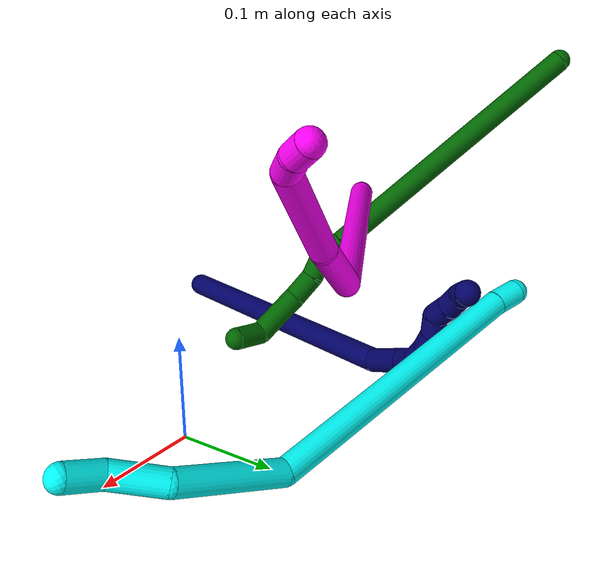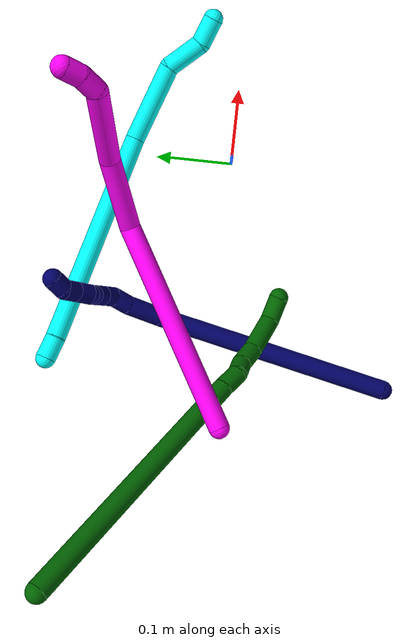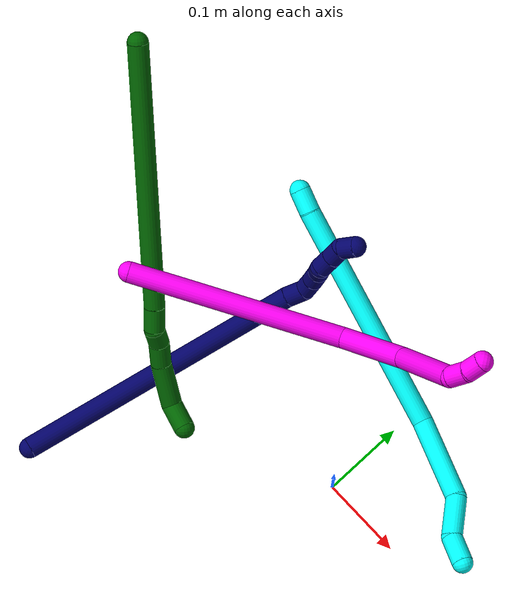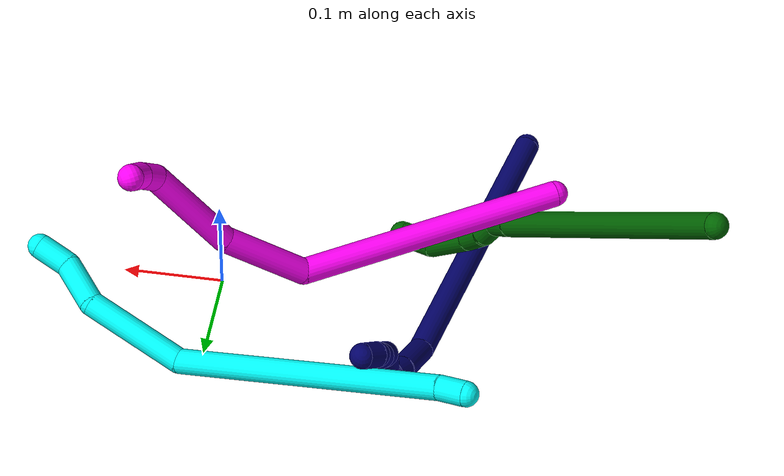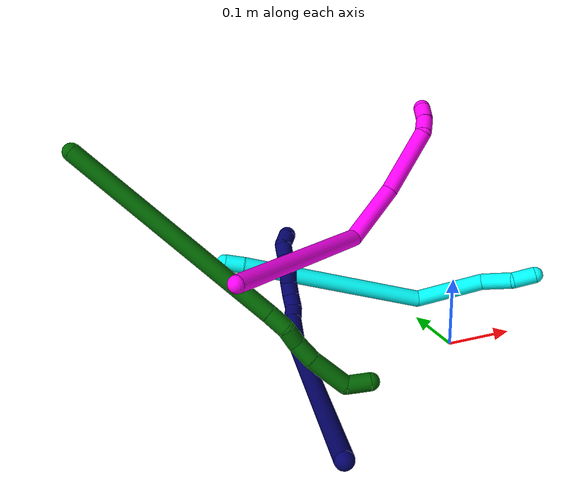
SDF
<sdf version="1.7">
 <world name="default">
  <model name="3">
   <static>0</static>
   <link name="3">
    <collision name="collision-cylinder-e_1_1_4">
     <pose>0.001653 -0.000907 -0.013918 3.07653 0.117935 2.13402</pose>
     <geometry><cylinder><radius>0.0125</radius><length>0.02809</length></cylinder></geometry>
     <surface>
      <friction><ode><mu>1.16</mu><mu2>1.16</mu2><slip1>0</slip1><slip2>0</slip2></ode></friction>
      <contact><ode><kp>1e+06</kp><kd>1</kd><max_vel>0</max_vel><min_depth>0.001</min_depth></ode></contact>
     </surface>
    </collision>
    <visual name="visual-cylinder-e_1_1_4">
     <pose>0.001653 -0.000907 -0.013918 3.07653 0.117935 2.13402</pose>
     <geometry><cylinder><radius>0.0125</radius><length>0.02809</length></cylinder></geometry>
     <material><ambient>0.003922 1 0.996078 1</ambient></material>
    </visual>
    <collision name="collision-cylinder-e_2_4_5">
     <pose>0.02704 0.00425 -0.167066 -3.09807 0.168689 -2.63763</pose>
     <geometry><cylinder><radius>0.0125</radius><length>0.282737</length></cylinder></geometry>
     <surface>
      <friction><ode><mu>1.16</mu><mu2>1.16</mu2><slip1>0</slip1><slip2>0</slip2></ode></friction>
      <contact><ode><kp>1e+06</kp><kd>1</kd><max_vel>0</max_vel><min_depth>0.001</min_depth></ode></contact>
     </surface>
    </collision>
    <visual name="visual-cylinder-e_2_4_5">
     <pose>0.02704 0.00425 -0.167066 -3.09807 0.168689 -2.63763</pose>
     <geometry><cylinder><radius>0.0125</radius><length>0.282737</length></cylinder></geometry>
     <material><ambient>0.003922 1 0.996078 1</ambient></material>
    </visual>
    <collision name="collision-cylinder-e_3_5_6">
     <pose>0.060299 -0.015155 -0.351054 2.62424 0.182892 0.667214</pose>
     <geometry><cylinder><radius>0.0125</radius><length>0.10474</length></cylinder></geometry>
     <surface>
      <friction><ode><mu>1.16</mu><mu2>1.16</mu2><slip1>0</slip1><slip2>0</slip2></ode></friction>
      <contact><ode><kp>1e+06</kp><kd>1</kd><max_vel>0</max_vel><min_depth>0.001</min_depth></ode></contact>
     </surface>
    </collision>
    <visual name="visual-cylinder-e_3_5_6">
     <pose>0.060299 -0.015155 -0.351054 2.62424 0.182892 0.667214</pose>
     <geometry><cylinder><radius>0.0125</radius><length>0.10474</length></cylinder></geometry>
     <material><ambient>0.003922 1 0.996078 1</ambient></material>
    </visual>
    <collision name="collision-cylinder-e_4_6_7">
     <pose>0.062461 -0.054605 -0.415226 2.51751 -0.298521 -0.872445</pose>
     <geometry><cylinder><radius>0.0125</radius><length>0.050065</length></cylinder></geometry>
     <surface>
      <friction><ode><mu>1.16</mu><mu2>1.16</mu2><slip1>0</slip1><slip2>0</slip2></ode></friction>
      <contact><ode><kp>1e+06</kp><kd>1</kd><max_vel>0</max_vel><min_depth>0.001</min_depth></ode></contact>
     </surface>
    </collision>
    <visual name="visual-cylinder-e_4_6_7">
     <pose>0.062461 -0.054605 -0.415226 2.51751 -0.298521 -0.872445</pose>
     <geometry><cylinder><radius>0.0125</radius><length>0.050065</length></cylinder></geometry>
     <material><ambient>0.003922 1 0.996078 1</ambient></material>
    </visual>
    <collision name="collision-cylinder-e_5_7_2">
     <pose>0.057944 -0.076953 -0.449379 2.62522 0.166307 0.61143</pose>
     <geometry><cylinder><radius>0.0125</radius><length>0.034367</length></cylinder></geometry>
     <surface>
      <friction><ode><mu>1.16</mu><mu2>1.16</mu2><slip1>0</slip1><slip2>0</slip2></ode></friction>
      <contact><ode><kp>1e+06</kp><kd>1</kd><max_vel>0</max_vel><min_depth>0.001</min_depth></ode></contact>
     </surface>
    </collision>
    <visual name="visual-cylinder-e_5_7_2">
     <pose>0.057944 -0.076953 -0.449379 2.62522 0.166307 0.61143</pose>
     <geometry><cylinder><radius>0.0125</radius><length>0.034367</length></cylinder></geometry>
     <material><ambient>0.003922 1 0.996078 1</ambient></material>
    </visual>
    <collision name="collision-sphere-2">
     <pose>0.060788 -0.08532 -0.464116 0 -0 0</pose>
     <geometry><sphere><radius>0.0125</radius></sphere></geometry>
     <surface>
      <friction><ode><mu>1.16</mu><mu2>1.16</mu2><slip1>0</slip1><slip2>0</slip2></ode></friction>
      <contact><ode><kp>1e+06</kp><kd>1</kd><max_vel>0</max_vel><min_depth>0.001</min_depth></ode></contact>
     </surface>
    </collision>
    <visual name="visual-sphere-2">
     <pose>0.060788 -0.08532 -0.464116 0 -0 0</pose>
     <geometry><sphere><radius>0.0125</radius></sphere></geometry>
     <material><ambient>0.003922 1 0.996078 1</ambient></material>
    </visual>
    <collision name="collision-sphere-7">
     <pose>0.055099 -0.068586 -0.434642 0 -0 0</pose>
     <geometry><sphere><radius>0.0125</radius></sphere></geometry>
     <surface>
      <friction><ode><mu>1.16</mu><mu2>1.16</mu2><slip1>0</slip1><slip2>0</slip2></ode></friction>
      <contact><ode><kp>1e+06</kp><kd>1</kd><max_vel>0</max_vel><min_depth>0.001</min_depth></ode></contact>
     </surface>
    </collision>
    <visual name="visual-sphere-7">
     <pose>0.055099 -0.068586 -0.434642 0 -0 0</pose>
     <geometry><sphere><radius>0.0125</radius></sphere></geometry>
     <material><ambient>0.003922 1 0.996078 1</ambient></material>
    </visual>
    <collision name="collision-sphere-6">
     <pose>0.069824 -0.040624 -0.395811 0 -0 0</pose>
     <geometry><sphere><radius>0.0125</radius></sphere></geometry>
     <surface>
      <friction><ode><mu>1.16</mu><mu2>1.16</mu2><slip1>0</slip1><slip2>0</slip2></ode></friction>
      <contact><ode><kp>1e+06</kp><kd>1</kd><max_vel>0</max_vel><min_depth>0.001</min_depth></ode></contact>
     </surface>
    </collision>
    <visual name="visual-sphere-6">
     <pose>0.069824 -0.040624 -0.395811 0 -0 0</pose>
     <geometry><sphere><radius>0.0125</radius></sphere></geometry>
     <material><ambient>0.003922 1 0.996078 1</ambient></material>
    </visual>
    <collision name="collision-sphere-5">
     <pose>0.050774 0.010314 -0.306296 0 -0 0</pose>
     <geometry><sphere><radius>0.0125</radius></sphere></geometry>
     <surface>
      <friction><ode><mu>1.16</mu><mu2>1.16</mu2><slip1>0</slip1><slip2>0</slip2></ode></friction>
      <contact><ode><kp>1e+06</kp><kd>1</kd><max_vel>0</max_vel><min_depth>0.001</min_depth></ode></contact>
     </surface>
    </collision>
    <visual name="visual-sphere-5">
     <pose>0.050774 0.010314 -0.306296 0 -0 0</pose>
     <geometry><sphere><radius>0.0125</radius></sphere></geometry>
     <material><ambient>0.003922 1 0.996078 1</ambient></material>
    </visual>
    <collision name="collision-sphere-1">
     <geometry><sphere><radius>0.0125</radius></sphere></geometry>
     <surface>
      <friction><ode><mu>1.16</mu><mu2>1.16</mu2><slip1>0</slip1><slip2>0</slip2></ode></friction>
      <contact><ode><kp>1e+06</kp><kd>1</kd><max_vel>0</max_vel><min_depth>0.001</min_depth></ode></contact>
     </surface>
    </collision>
    <visual name="visual-sphere-1">
     <geometry><sphere><radius>0.0125</radius></sphere></geometry>
     <material><ambient>0.003922 1 0.996078 1</ambient></material>
    </visual>
    <collision name="collision-sphere-4">
     <pose>0.003305 -0.001814 -0.027836 0 -0 0</pose>
     <geometry><sphere><radius>0.0125</radius></sphere></geometry>
     <surface>
      <friction><ode><mu>1.16</mu><mu2>1.16</mu2><slip1>0</slip1><slip2>0</slip2></ode></friction>
      <contact><ode><kp>1e+06</kp><kd>1</kd><max_vel>0</max_vel><min_depth>0.001</min_depth></ode></contact>
     </surface>
    </collision>
    <visual name="visual-sphere-4">
     <pose>0.003305 -0.001814 -0.027836 0 -0 0</pose>
     <geometry><sphere><radius>0.0125</radius></sphere></geometry>
     <material><ambient>0.003922 1 0.996078 1</ambient></material>
    </visual>
    <inertial>
     <pose>0.038251 -0.011579 -0.241257 0 -0 0</pose>
     <mass>0.5</mass>
     <inertia>
      <ixx>-0.002389</ixx>
      <ixy>0</ixy>
      <ixz>0</ixz>
      <iyy>0.000743</iyy>
      <iyz>0</iyz>
      <izz>-0.000393</izz>
     </inertia>
    </inertial>
   </link>
   <pose>-0.273504 0.202245 0.097118 -1.27875 -0.273561 1.07308</pose>
  </model>
  <model name="6">
   <static>0</static>
   <link name="6">
    <collision name="collision-cylinder-e_1_1_4">
     <pose>-0.009474 0.00011 -0.163631 -3.14092 -0.057833 3.11832</pose>
     <geometry><cylinder><radius>0.0125</radius><length>0.32781</length></cylinder></geometry>
     <surface>
      <friction><ode><mu>1.16</mu><mu2>1.16</mu2><slip1>0</slip1><slip2>0</slip2></ode></friction>
      <contact><ode><kp>1e+06</kp><kd>1</kd><max_vel>0</max_vel><min_depth>0.001</min_depth></ode></contact>
     </surface>
    </collision>
    <visual name="visual-cylinder-e_1_1_4">
     <pose>-0.009474 0.00011 -0.163631 -3.14092 -0.057833 3.11832</pose>
     <geometry><cylinder><radius>0.0125</radius><length>0.32781</length></cylinder></geometry>
     <material><ambient>0 0.392157 0.003922 1</ambient></material>
    </visual>
    <collision name="collision-cylinder-e_2_4_5">
     <pose>-0.020366 -0.000473 -0.341807 3.09399 -0.097105 -2.23049</pose>
     <geometry><cylinder><radius>0.0125</radius><length>0.029261</length></cylinder></geometry>
     <surface>
      <friction><ode><mu>1.16</mu><mu2>1.16</mu2><slip1>0</slip1><slip2>0</slip2></ode></friction>
      <contact><ode><kp>1e+06</kp><kd>1</kd><max_vel>0</max_vel><min_depth>0.001</min_depth></ode></contact>
     </surface>
    </collision>
    <visual name="visual-cylinder-e_2_4_5">
     <pose>-0.020366 -0.000473 -0.341807 3.09399 -0.097105 -2.23049</pose>
     <geometry><cylinder><radius>0.0125</radius><length>0.029261</length></cylinder></geometry>
     <material><ambient>0 0.392157 0.003922 1</ambient></material>
    </visual>
    <collision name="collision-cylinder-e_3_5_6">
     <pose>-0.025071 0.003254 -0.366993 -2.74795 -0.277893 1.22324</pose>
     <geometry><cylinder><radius>0.0125</radius><length>0.023962</length></cylinder></geometry>
     <surface>
      <friction><ode><mu>1.16</mu><mu2>1.16</mu2><slip1>0</slip1><slip2>0</slip2></ode></friction>
      <contact><ode><kp>1e+06</kp><kd>1</kd><max_vel>0</max_vel><min_depth>0.001</min_depth></ode></contact>
     </surface>
    </collision>
    <visual name="visual-cylinder-e_3_5_6">
     <pose>-0.025071 0.003254 -0.366993 -2.74795 -0.277893 1.22324</pose>
     <geometry><cylinder><radius>0.0125</radius><length>0.023962</length></cylinder></geometry>
     <material><ambient>0 0.392157 0.003922 1</ambient></material>
    </visual>
    <collision name="collision-cylinder-e_4_6_7">
     <pose>-0.030996 0.009445 -0.392228 -3.02075 -0.177526 1.94762</pose>
     <geometry><cylinder><radius>0.0125</radius><length>0.029874</length></cylinder></geometry>
     <surface>
      <friction><ode><mu>1.16</mu><mu2>1.16</mu2><slip1>0</slip1><slip2>0</slip2></ode></friction>
      <contact><ode><kp>1e+06</kp><kd>1</kd><max_vel>0</max_vel><min_depth>0.001</min_depth></ode></contact>
     </surface>
    </collision>
    <visual name="visual-cylinder-e_4_6_7">
     <pose>-0.030996 0.009445 -0.392228 -3.02075 -0.177526 1.94762</pose>
     <geometry><cylinder><radius>0.0125</radius><length>0.029874</length></cylinder></geometry>
     <material><ambient>0 0.392157 0.003922 1</ambient></material>
    </visual>
    <collision name="collision-cylinder-e_5_7_8">
     <pose>-0.033645 0.015907 -0.434602 -2.97435 -0.000388 0.00463</pose>
     <geometry><cylinder><radius>0.0125</radius><length>0.056344</length></cylinder></geometry>
     <surface>
      <friction><ode><mu>1.16</mu><mu2>1.16</mu2><slip1>0</slip1><slip2>0</slip2></ode></friction>
      <contact><ode><kp>1e+06</kp><kd>1</kd><max_vel>0</max_vel><min_depth>0.001</min_depth></ode></contact>
     </surface>
    </collision>
    <visual name="visual-cylinder-e_5_7_8">
     <pose>-0.033645 0.015907 -0.434602 -2.97435 -0.000388 0.00463</pose>
     <geometry><cylinder><radius>0.0125</radius><length>0.056344</length></cylinder></geometry>
     <material><ambient>0 0.392157 0.003922 1</ambient></material>
    </visual>
    <collision name="collision-cylinder-e_6_8_2">
     <pose>-0.02242 0.020446 -0.474291 3.12895 0.756244 3.10977</pose>
     <geometry><cylinder><radius>0.0125</radius><length>0.032748</length></cylinder></geometry>
     <surface>
      <friction><ode><mu>1.16</mu><mu2>1.16</mu2><slip1>0</slip1><slip2>0</slip2></ode></friction>
      <contact><ode><kp>1e+06</kp><kd>1</kd><max_vel>0</max_vel><min_depth>0.001</min_depth></ode></contact>
     </surface>
    </collision>
    <visual name="visual-cylinder-e_6_8_2">
     <pose>-0.02242 0.020446 -0.474291 3.12895 0.756244 3.10977</pose>
     <geometry><cylinder><radius>0.0125</radius><length>0.032748</length></cylinder></geometry>
     <material><ambient>0 0.392157 0.003922 1</ambient></material>
    </visual>
    <collision name="collision-sphere-2">
     <pose>-0.011184 0.020295 -0.486201 0 -0 0</pose>
     <geometry><sphere><radius>0.0125</radius></sphere></geometry>
     <surface>
      <friction><ode><mu>1.16</mu><mu2>1.16</mu2><slip1>0</slip1><slip2>0</slip2></ode></friction>
      <contact><ode><kp>1e+06</kp><kd>1</kd><max_vel>0</max_vel><min_depth>0.001</min_depth></ode></contact>
     </surface>
    </collision>
    <visual name="visual-sphere-2">
     <pose>-0.011184 0.020295 -0.486201 0 -0 0</pose>
     <geometry><sphere><radius>0.0125</radius></sphere></geometry>
     <material><ambient>0 0.392157 0.003922 1</ambient></material>
    </visual>
    <collision name="collision-sphere-4">
     <pose>-0.018948 0.00022 -0.327262 0 -0 0</pose>
     <geometry><sphere><radius>0.0125</radius></sphere></geometry>
     <surface>
      <friction><ode><mu>1.16</mu><mu2>1.16</mu2><slip1>0</slip1><slip2>0</slip2></ode></friction>
      <contact><ode><kp>1e+06</kp><kd>1</kd><max_vel>0</max_vel><min_depth>0.001</min_depth></ode></contact>
     </surface>
    </collision>
    <visual name="visual-sphere-4">
     <pose>-0.018948 0.00022 -0.327262 0 -0 0</pose>
     <geometry><sphere><radius>0.0125</radius></sphere></geometry>
     <material><ambient>0 0.392157 0.003922 1</ambient></material>
    </visual>
    <collision name="collision-sphere-1">
     <geometry><sphere><radius>0.0125</radius></sphere></geometry>
     <surface>
      <friction><ode><mu>1.16</mu><mu2>1.16</mu2><slip1>0</slip1><slip2>0</slip2></ode></friction>
      <contact><ode><kp>1e+06</kp><kd>1</kd><max_vel>0</max_vel><min_depth>0.001</min_depth></ode></contact>
     </surface>
    </collision>
    <visual name="visual-sphere-1">
     <geometry><sphere><radius>0.0125</radius></sphere></geometry>
     <material><ambient>0 0.392157 0.003922 1</ambient></material>
    </visual>
    <collision name="collision-sphere-8">
     <pose>-0.033656 0.020597 -0.462381 0 -0 0</pose>
     <geometry><sphere><radius>0.0125</radius></sphere></geometry>
     <surface>
      <friction><ode><mu>1.16</mu><mu2>1.16</mu2><slip1>0</slip1><slip2>0</slip2></ode></friction>
      <contact><ode><kp>1e+06</kp><kd>1</kd><max_vel>0</max_vel><min_depth>0.001</min_depth></ode></contact>
     </surface>
    </collision>
    <visual name="visual-sphere-8">
     <pose>-0.033656 0.020597 -0.462381 0 -0 0</pose>
     <geometry><sphere><radius>0.0125</radius></sphere></geometry>
     <material><ambient>0 0.392157 0.003922 1</ambient></material>
    </visual>
    <collision name="collision-sphere-5">
     <pose>-0.021785 -0.001166 -0.356352 0 -0 0</pose>
     <geometry><sphere><radius>0.0125</radius></sphere></geometry>
     <surface>
      <friction><ode><mu>1.16</mu><mu2>1.16</mu2><slip1>0</slip1><slip2>0</slip2></ode></friction>
      <contact><ode><kp>1e+06</kp><kd>1</kd><max_vel>0</max_vel><min_depth>0.001</min_depth></ode></contact>
     </surface>
    </collision>
    <visual name="visual-sphere-5">
     <pose>-0.021785 -0.001166 -0.356352 0 -0 0</pose>
     <geometry><sphere><radius>0.0125</radius></sphere></geometry>
     <material><ambient>0 0.392157 0.003922 1</ambient></material>
    </visual>
    <collision name="collision-sphere-6">
     <pose>-0.028358 0.007673 -0.377633 0 -0 0</pose>
     <geometry><sphere><radius>0.0125</radius></sphere></geometry>
     <surface>
      <friction><ode><mu>1.16</mu><mu2>1.16</mu2><slip1>0</slip1><slip2>0</slip2></ode></friction>
      <contact><ode><kp>1e+06</kp><kd>1</kd><max_vel>0</max_vel><min_depth>0.001</min_depth></ode></contact>
     </surface>
    </collision>
    <visual name="visual-sphere-6">
     <pose>-0.028358 0.007673 -0.377633 0 -0 0</pose>
     <geometry><sphere><radius>0.0125</radius></sphere></geometry>
     <material><ambient>0 0.392157 0.003922 1</ambient></material>
    </visual>
    <collision name="collision-sphere-7">
     <pose>-0.033634 0.011217 -0.406823 0 -0 0</pose>
     <geometry><sphere><radius>0.0125</radius></sphere></geometry>
     <surface>
      <friction><ode><mu>1.16</mu><mu2>1.16</mu2><slip1>0</slip1><slip2>0</slip2></ode></friction>
      <contact><ode><kp>1e+06</kp><kd>1</kd><max_vel>0</max_vel><min_depth>0.001</min_depth></ode></contact>
     </surface>
    </collision>
    <visual name="visual-sphere-7">
     <pose>-0.033634 0.011217 -0.406823 0 -0 0</pose>
     <geometry><sphere><radius>0.0125</radius></sphere></geometry>
     <material><ambient>0 0.392157 0.003922 1</ambient></material>
    </visual>
    <inertial>
     <pose>-0.015716 0.003896 -0.248345 0 -0 0</pose>
     <mass>0.5</mass>
     <inertia>
      <ixx>-0.002861</ixx>
      <ixy>0</ixy>
      <ixz>0</ixz>
      <iyy>0.00301</iyy>
      <iyz>0</iyz>
      <izz>0.000125</izz>
     </inertia>
    </inertial>
   </link>
   <pose>-0.48848 0.14947 0.301055 -0.693349 -0.76406 0.222307</pose>
  </model>
  <model name="7">
   <static>0</static>
   <link name="7">
    <collision name="collision-cylinder-e_1_1_4">
     <pose>0.048954 0.131707 0.065888 -1.10694 0.320925 -0.199353</pose>
     <geometry><cylinder><radius>0.0125</radius><length>0.310384</length></cylinder></geometry>
     <surface>
      <friction><ode><mu>1.16</mu><mu2>1.16</mu2><slip1>0</slip1><slip2>0</slip2></ode></friction>
      <contact><ode><kp>1e+06</kp><kd>1</kd><max_vel>0</max_vel><min_depth>0.001</min_depth></ode></contact>
     </surface>
    </collision>
    <visual name="visual-cylinder-e_1_1_4">
     <pose>0.048954 0.131707 0.065888 -1.10694 0.320925 -0.199353</pose>
     <geometry><cylinder><radius>0.0125</radius><length>0.310384</length></cylinder></geometry>
     <material><ambient>0.003922 0 0.403922 1</ambient></material>
    </visual>
    <collision name="collision-cylinder-e_2_4_5">
     <pose>0.106471 0.277801 0.147511 -0.740664 0.381895 -0.149817</pose>
     <geometry><cylinder><radius>0.0125</radius><length>0.04595</length></cylinder></geometry>
     <surface>
      <friction><ode><mu>1.16</mu><mu2>1.16</mu2><slip1>0</slip1><slip2>0</slip2></ode></friction>
      <contact><ode><kp>1e+06</kp><kd>1</kd><max_vel>0</max_vel><min_depth>0.001</min_depth></ode></contact>
     </surface>
    </collision>
    <visual name="visual-cylinder-e_2_4_5">
     <pose>0.106471 0.277801 0.147511 -0.740664 0.381895 -0.149817</pose>
     <geometry><cylinder><radius>0.0125</radius><length>0.04595</length></cylinder></geometry>
     <material><ambient>0.003922 0 0.403922 1</ambient></material>
    </visual>
    <collision name="collision-cylinder-e_3_5_6">
     <pose>0.12094 0.29833 0.171164 -0.659829 0.532527 -0.186248</pose>
     <geometry><cylinder><radius>0.0125</radius><length>0.023266</length></cylinder></geometry>
     <surface>
      <friction><ode><mu>1.16</mu><mu2>1.16</mu2><slip1>0</slip1><slip2>0</slip2></ode></friction>
      <contact><ode><kp>1e+06</kp><kd>1</kd><max_vel>0</max_vel><min_depth>0.001</min_depth></ode></contact>
     </surface>
    </collision>
    <visual name="visual-cylinder-e_3_5_6">
     <pose>0.12094 0.29833 0.171164 -0.659829 0.532527 -0.186248</pose>
     <geometry><cylinder><radius>0.0125</radius><length>0.023266</length></cylinder></geometry>
     <material><ambient>0.003922 0 0.403922 1</ambient></material>
    </visual>
    <collision name="collision-cylinder-e_4_6_7">
     <pose>0.128264 0.306017 0.188867 -0.156472 0.142174 -0.011165</pose>
     <geometry><cylinder><radius>0.0125</radius><length>0.020015</length></cylinder></geometry>
     <surface>
      <friction><ode><mu>1.16</mu><mu2>1.16</mu2><slip1>0</slip1><slip2>0</slip2></ode></friction>
      <contact><ode><kp>1e+06</kp><kd>1</kd><max_vel>0</max_vel><min_depth>0.001</min_depth></ode></contact>
     </surface>
    </collision>
    <visual name="visual-cylinder-e_4_6_7">
     <pose>0.128264 0.306017 0.188867 -0.156472 0.142174 -0.011165</pose>
     <geometry><cylinder><radius>0.0125</radius><length>0.020015</length></cylinder></geometry>
     <material><ambient>0.003922 0 0.403922 1</ambient></material>
    </visual>
    <collision name="collision-cylinder-e_5_7_8">
     <pose>0.130886 0.30732 0.208588 0.024252 0.120535 0.001463</pose>
     <geometry><cylinder><radius>0.0125</radius><length>0.020022</length></cylinder></geometry>
     <surface>
      <friction><ode><mu>1.16</mu><mu2>1.16</mu2><slip1>0</slip1><slip2>0</slip2></ode></friction>
      <contact><ode><kp>1e+06</kp><kd>1</kd><max_vel>0</max_vel><min_depth>0.001</min_depth></ode></contact>
     </surface>
    </collision>
    <visual name="visual-cylinder-e_5_7_8">
     <pose>0.130886 0.30732 0.208588 0.024252 0.120535 0.001463</pose>
     <geometry><cylinder><radius>0.0125</radius><length>0.020022</length></cylinder></geometry>
     <material><ambient>0.003922 0 0.403922 1</ambient></material>
    </visual>
    <collision name="collision-cylinder-e_6_8_9">
     <pose>0.13324 0.303452 0.227873 0.370064 0.114237 0.021405</pose>
     <geometry><cylinder><radius>0.0125</radius><length>0.020189</length></cylinder></geometry>
     <surface>
      <friction><ode><mu>1.16</mu><mu2>1.16</mu2><slip1>0</slip1><slip2>0</slip2></ode></friction>
      <contact><ode><kp>1e+06</kp><kd>1</kd><max_vel>0</max_vel><min_depth>0.001</min_depth></ode></contact>
     </surface>
    </collision>
    <visual name="visual-cylinder-e_6_8_9">
     <pose>0.13324 0.303452 0.227873 0.370064 0.114237 0.021405</pose>
     <geometry><cylinder><radius>0.0125</radius><length>0.020189</length></cylinder></geometry>
     <material><ambient>0.003922 0 0.403922 1</ambient></material>
    </visual>
    <collision name="collision-cylinder-e_7_9_10">
     <pose>0.136566 0.303262 0.246443 -0.356796 0.217588 -0.039385</pose>
     <geometry><cylinder><radius>0.0125</radius><length>0.020156</length></cylinder></geometry>
     <surface>
      <friction><ode><mu>1.16</mu><mu2>1.16</mu2><slip1>0</slip1><slip2>0</slip2></ode></friction>
      <contact><ode><kp>1e+06</kp><kd>1</kd><max_vel>0</max_vel><min_depth>0.001</min_depth></ode></contact>
     </surface>
    </collision>
    <visual name="visual-cylinder-e_7_9_10">
     <pose>0.136566 0.303262 0.246443 -0.356796 0.217588 -0.039385</pose>
     <geometry><cylinder><radius>0.0125</radius><length>0.020156</length></cylinder></geometry>
     <material><ambient>0.003922 0 0.403922 1</ambient></material>
    </visual>
    <collision name="collision-cylinder-e_8_10_11">
     <pose>0.140747 0.308919 0.265212 -0.228451 0.201711 -0.023219</pose>
     <geometry><cylinder><radius>0.0125</radius><length>0.020013</length></cylinder></geometry>
     <surface>
      <friction><ode><mu>1.16</mu><mu2>1.16</mu2><slip1>0</slip1><slip2>0</slip2></ode></friction>
      <contact><ode><kp>1e+06</kp><kd>1</kd><max_vel>0</max_vel><min_depth>0.001</min_depth></ode></contact>
     </surface>
    </collision>
    <visual name="visual-cylinder-e_8_10_11">
     <pose>0.140747 0.308919 0.265212 -0.228451 0.201711 -0.023219</pose>
     <geometry><cylinder><radius>0.0125</radius><length>0.020013</length></cylinder></geometry>
     <material><ambient>0.003922 0 0.403922 1</ambient></material>
    </visual>
    <collision name="collision-cylinder-e_9_11_2">
     <pose>0.149598 0.314229 0.281368 -0.437389 0.753777 -0.175485</pose>
     <geometry><cylinder><radius>0.0125</radius><length>0.020006</length></cylinder></geometry>
     <surface>
      <friction><ode><mu>1.16</mu><mu2>1.16</mu2><slip1>0</slip1><slip2>0</slip2></ode></friction>
      <contact><ode><kp>1e+06</kp><kd>1</kd><max_vel>0</max_vel><min_depth>0.001</min_depth></ode></contact>
     </surface>
    </collision>
    <visual name="visual-cylinder-e_9_11_2">
     <pose>0.149598 0.314229 0.281368 -0.437389 0.753777 -0.175485</pose>
     <geometry><cylinder><radius>0.0125</radius><length>0.020006</length></cylinder></geometry>
     <material><ambient>0.003922 0 0.403922 1</ambient></material>
    </visual>
    <collision name="collision-sphere-2">
     <pose>0.156444 0.317318 0.287975 0 -0 0</pose>
     <geometry><sphere><radius>0.0125</radius></sphere></geometry>
     <surface>
      <friction><ode><mu>1.16</mu><mu2>1.16</mu2><slip1>0</slip1><slip2>0</slip2></ode></friction>
      <contact><ode><kp>1e+06</kp><kd>1</kd><max_vel>0</max_vel><min_depth>0.001</min_depth></ode></contact>
     </surface>
    </collision>
    <visual name="visual-sphere-2">
     <pose>0.156444 0.317318 0.287975 0 -0 0</pose>
     <geometry><sphere><radius>0.0125</radius></sphere></geometry>
     <material><ambient>0.003922 0 0.403922 1</ambient></material>
    </visual>
    <collision name="collision-sphere-11">
     <pose>0.142751 0.311139 0.274761 0 -0 0</pose>
     <geometry><sphere><radius>0.0125</radius></sphere></geometry>
     <surface>
      <friction><ode><mu>1.16</mu><mu2>1.16</mu2><slip1>0</slip1><slip2>0</slip2></ode></friction>
      <contact><ode><kp>1e+06</kp><kd>1</kd><max_vel>0</max_vel><min_depth>0.001</min_depth></ode></contact>
     </surface>
    </collision>
    <visual name="visual-sphere-11">
     <pose>0.142751 0.311139 0.274761 0 -0 0</pose>
     <geometry><sphere><radius>0.0125</radius></sphere></geometry>
     <material><ambient>0.003922 0 0.403922 1</ambient></material>
    </visual>
    <collision name="collision-sphere-10">
     <pose>0.138742 0.306699 0.255664 0 -0 0</pose>
     <geometry><sphere><radius>0.0125</radius></sphere></geometry>
     <surface>
      <friction><ode><mu>1.16</mu><mu2>1.16</mu2><slip1>0</slip1><slip2>0</slip2></ode></friction>
      <contact><ode><kp>1e+06</kp><kd>1</kd><max_vel>0</max_vel><min_depth>0.001</min_depth></ode></contact>
     </surface>
    </collision>
    <visual name="visual-sphere-10">
     <pose>0.138742 0.306699 0.255664 0 -0 0</pose>
     <geometry><sphere><radius>0.0125</radius></sphere></geometry>
     <material><ambient>0.003922 0 0.403922 1</ambient></material>
    </visual>
    <collision name="collision-sphere-9">
     <pose>0.134391 0.299825 0.237223 0 -0 0</pose>
     <geometry><sphere><radius>0.0125</radius></sphere></geometry>
     <surface>
      <friction><ode><mu>1.16</mu><mu2>1.16</mu2><slip1>0</slip1><slip2>0</slip2></ode></friction>
      <contact><ode><kp>1e+06</kp><kd>1</kd><max_vel>0</max_vel><min_depth>0.001</min_depth></ode></contact>
     </surface>
    </collision>
    <visual name="visual-sphere-9">
     <pose>0.134391 0.299825 0.237223 0 -0 0</pose>
     <geometry><sphere><radius>0.0125</radius></sphere></geometry>
     <material><ambient>0.003922 0 0.403922 1</ambient></material>
    </visual>
    <collision name="collision-sphere-4">
     <pose>0.097909 0.263414 0.131776 0 -0 0</pose>
     <geometry><sphere><radius>0.0125</radius></sphere></geometry>
     <surface>
      <friction><ode><mu>1.16</mu><mu2>1.16</mu2><slip1>0</slip1><slip2>0</slip2></ode></friction>
      <contact><ode><kp>1e+06</kp><kd>1</kd><max_vel>0</max_vel><min_depth>0.001</min_depth></ode></contact>
     </surface>
    </collision>
    <visual name="visual-sphere-4">
     <pose>0.097909 0.263414 0.131776 0 -0 0</pose>
     <geometry><sphere><radius>0.0125</radius></sphere></geometry>
     <material><ambient>0.003922 0 0.403922 1</ambient></material>
    </visual>
    <collision name="collision-sphere-1">
     <geometry><sphere><radius>0.0125</radius></sphere></geometry>
     <surface>
      <friction><ode><mu>1.16</mu><mu2>1.16</mu2><slip1>0</slip1><slip2>0</slip2></ode></friction>
      <contact><ode><kp>1e+06</kp><kd>1</kd><max_vel>0</max_vel><min_depth>0.001</min_depth></ode></contact>
     </surface>
    </collision>
    <visual name="visual-sphere-1">
     <geometry><sphere><radius>0.0125</radius></sphere></geometry>
     <material><ambient>0.003922 0 0.403922 1</ambient></material>
    </visual>
    <collision name="collision-sphere-8">
     <pose>0.132089 0.307079 0.218523 0 -0 0</pose>
     <geometry><sphere><radius>0.0125</radius></sphere></geometry>
     <surface>
      <friction><ode><mu>1.16</mu><mu2>1.16</mu2><slip1>0</slip1><slip2>0</slip2></ode></friction>
      <contact><ode><kp>1e+06</kp><kd>1</kd><max_vel>0</max_vel><min_depth>0.001</min_depth></ode></contact>
     </surface>
    </collision>
    <visual name="visual-sphere-8">
     <pose>0.132089 0.307079 0.218523 0 -0 0</pose>
     <geometry><sphere><radius>0.0125</radius></sphere></geometry>
     <material><ambient>0.003922 0 0.403922 1</ambient></material>
    </visual>
    <collision name="collision-sphere-5">
     <pose>0.115034 0.292187 0.163245 0 -0 0</pose>
     <geometry><sphere><radius>0.0125</radius></sphere></geometry>
     <surface>
      <friction><ode><mu>1.16</mu><mu2>1.16</mu2><slip1>0</slip1><slip2>0</slip2></ode></friction>
      <contact><ode><kp>1e+06</kp><kd>1</kd><max_vel>0</max_vel><min_depth>0.001</min_depth></ode></contact>
     </surface>
    </collision>
    <visual name="visual-sphere-5">
     <pose>0.115034 0.292187 0.163245 0 -0 0</pose>
     <geometry><sphere><radius>0.0125</radius></sphere></geometry>
     <material><ambient>0.003922 0 0.403922 1</ambient></material>
    </visual>
    <collision name="collision-sphere-6">
     <pose>0.126846 0.304474 0.179082 0 -0 0</pose>
     <geometry><sphere><radius>0.0125</radius></sphere></geometry>
     <surface>
      <friction><ode><mu>1.16</mu><mu2>1.16</mu2><slip1>0</slip1><slip2>0</slip2></ode></friction>
      <contact><ode><kp>1e+06</kp><kd>1</kd><max_vel>0</max_vel><min_depth>0.001</min_depth></ode></contact>
     </surface>
    </collision>
    <visual name="visual-sphere-6">
     <pose>0.126846 0.304474 0.179082 0 -0 0</pose>
     <geometry><sphere><radius>0.0125</radius></sphere></geometry>
     <material><ambient>0.003922 0 0.403922 1</ambient></material>
    </visual>
    <collision name="collision-sphere-7">
     <pose>0.129682 0.307561 0.198653 0 -0 0</pose>
     <geometry><sphere><radius>0.0125</radius></sphere></geometry>
     <surface>
      <friction><ode><mu>1.16</mu><mu2>1.16</mu2><slip1>0</slip1><slip2>0</slip2></ode></friction>
      <contact><ode><kp>1e+06</kp><kd>1</kd><max_vel>0</max_vel><min_depth>0.001</min_depth></ode></contact>
     </surface>
    </collision>
    <visual name="visual-sphere-7">
     <pose>0.129682 0.307561 0.198653 0 -0 0</pose>
     <geometry><sphere><radius>0.0125</radius></sphere></geometry>
     <material><ambient>0.003922 0 0.403922 1</ambient></material>
    </visual>
    <inertial>
     <pose>0.078681 0.195143 0.119344 0 -0 0</pose>
     <mass>0.5</mass>
     <inertia>
      <ixx>0.001888</ixx>
      <ixy>0</ixy>
      <ixz>0</ixz>
      <iyy>0.000808</iyy>
      <iyz>0</iyz>
      <izz>-0.002907</izz>
     </inertia>
    </inertial>
   </link>
   <pose>-0.277634 -0.230875 0.011499 -0.485735 -0.065716 0.109661</pose>
  </model>
  <model name="10">
   <static>0</static>
   <link name="10">
    <collision name="collision-cylinder-e_1_1_4">
     <pose>-0.00706 -0.007339 -0.129232 3.08487 -0.054492 -1.53061</pose>
     <geometry><cylinder><radius>0.0125</radius><length>0.259264</length></cylinder></geometry>
     <surface>
      <friction><ode><mu>1.16</mu><mu2>1.16</mu2><slip1>0</slip1><slip2>0</slip2></ode></friction>
      <contact><ode><kp>1e+06</kp><kd>1</kd><max_vel>0</max_vel><min_depth>0.001</min_depth></ode></contact>
     </surface>
    </collision>
    <visual name="visual-cylinder-e_1_1_4">
     <pose>-0.00706 -0.007339 -0.129232 3.08487 -0.054492 -1.53061</pose>
     <geometry><cylinder><radius>0.0125</radius><length>0.259264</length></cylinder></geometry>
     <material><ambient>1 0 0.964706 1</ambient></material>
    </visual>
    <collision name="collision-cylinder-e_2_4_5">
     <pose>0.007014 -0.037321 -0.293581 2.56888 0.468264 1.36164</pose>
     <geometry><cylinder><radius>0.0125</radius><length>0.093652</length></cylinder></geometry>
     <surface>
      <friction><ode><mu>1.16</mu><mu2>1.16</mu2><slip1>0</slip1><slip2>0</slip2></ode></friction>
      <contact><ode><kp>1e+06</kp><kd>1</kd><max_vel>0</max_vel><min_depth>0.001</min_depth></ode></contact>
     </surface>
    </collision>
    <visual name="visual-cylinder-e_2_4_5">
     <pose>0.007014 -0.037321 -0.293581 2.56888 0.468264 1.36164</pose>
     <geometry><cylinder><radius>0.0125</radius><length>0.093652</length></cylinder></geometry>
     <material><ambient>1 0 0.964706 1</ambient></material>
    </visual>
    <collision name="collision-cylinder-e_3_5_6">
     <pose>0.057852 -0.090768 -0.35503 2.27808 0.63253 1.23516</pose>
     <geometry><cylinder><radius>0.0125</radius><length>0.100489</length></cylinder></geometry>
     <surface>
      <friction><ode><mu>1.16</mu><mu2>1.16</mu2><slip1>0</slip1><slip2>0</slip2></ode></friction>
      <contact><ode><kp>1e+06</kp><kd>1</kd><max_vel>0</max_vel><min_depth>0.001</min_depth></ode></contact>
     </surface>
    </collision>
    <visual name="visual-cylinder-e_3_5_6">
     <pose>0.057852 -0.090768 -0.35503 2.27808 0.63253 1.23516</pose>
     <geometry><cylinder><radius>0.0125</radius><length>0.100489</length></cylinder></geometry>
     <material><ambient>1 0 0.964706 1</ambient></material>
    </visual>
    <collision name="collision-cylinder-e_4_6_7">
     <pose>0.096226 -0.122455 -0.389773 3.03692 0.79788 2.89431</pose>
     <geometry><cylinder><radius>0.0125</radius><length>0.024224</length></cylinder></geometry>
     <surface>
      <friction><ode><mu>1.16</mu><mu2>1.16</mu2><slip1>0</slip1><slip2>0</slip2></ode></friction>
      <contact><ode><kp>1e+06</kp><kd>1</kd><max_vel>0</max_vel><min_depth>0.001</min_depth></ode></contact>
     </surface>
    </collision>
    <visual name="visual-cylinder-e_4_6_7">
     <pose>0.096226 -0.122455 -0.389773 3.03692 0.79788 2.89431</pose>
     <geometry><cylinder><radius>0.0125</radius><length>0.024224</length></cylinder></geometry>
     <material><ambient>1 0 0.964706 1</ambient></material>
    </visual>
    <collision name="collision-cylinder-e_5_7_2">
     <pose>0.113761 -0.121483 -0.404748 -2.86598 0.914848 -2.59234</pose>
     <geometry><cylinder><radius>0.0125</radius><length>0.02237</length></cylinder></geometry>
     <surface>
      <friction><ode><mu>1.16</mu><mu2>1.16</mu2><slip1>0</slip1><slip2>0</slip2></ode></friction>
      <contact><ode><kp>1e+06</kp><kd>1</kd><max_vel>0</max_vel><min_depth>0.001</min_depth></ode></contact>
     </surface>
    </collision>
    <visual name="visual-cylinder-e_5_7_2">
     <pose>0.113761 -0.121483 -0.404748 -2.86598 0.914848 -2.59234</pose>
     <geometry><cylinder><radius>0.0125</radius><length>0.02237</length></cylinder></geometry>
     <material><ambient>1 0 0.964706 1</ambient></material>
    </visual>
    <collision name="collision-sphere-2">
     <pose>0.122625 -0.119626 -0.411312 0 -0 0</pose>
     <geometry><sphere><radius>0.0125</radius></sphere></geometry>
     <surface>
      <friction><ode><mu>1.16</mu><mu2>1.16</mu2><slip1>0</slip1><slip2>0</slip2></ode></friction>
      <contact><ode><kp>1e+06</kp><kd>1</kd><max_vel>0</max_vel><min_depth>0.001</min_depth></ode></contact>
     </surface>
    </collision>
    <visual name="visual-sphere-2">
     <pose>0.122625 -0.119626 -0.411312 0 -0 0</pose>
     <geometry><sphere><radius>0.0125</radius></sphere></geometry>
     <material><ambient>1 0 0.964706 1</ambient></material>
    </visual>
    <collision name="collision-sphere-7">
     <pose>0.104897 -0.123339 -0.398183 0 -0 0</pose>
     <geometry><sphere><radius>0.0125</radius></sphere></geometry>
     <surface>
      <friction><ode><mu>1.16</mu><mu2>1.16</mu2><slip1>0</slip1><slip2>0</slip2></ode></friction>
      <contact><ode><kp>1e+06</kp><kd>1</kd><max_vel>0</max_vel><min_depth>0.001</min_depth></ode></contact>
     </surface>
    </collision>
    <visual name="visual-sphere-7">
     <pose>0.104897 -0.123339 -0.398183 0 -0 0</pose>
     <geometry><sphere><radius>0.0125</radius></sphere></geometry>
     <material><ambient>1 0 0.964706 1</ambient></material>
    </visual>
    <collision name="collision-sphere-6">
     <pose>0.087556 -0.121572 -0.381362 0 -0 0</pose>
     <geometry><sphere><radius>0.0125</radius></sphere></geometry>
     <surface>
      <friction><ode><mu>1.16</mu><mu2>1.16</mu2><slip1>0</slip1><slip2>0</slip2></ode></friction>
      <contact><ode><kp>1e+06</kp><kd>1</kd><max_vel>0</max_vel><min_depth>0.001</min_depth></ode></contact>
     </surface>
    </collision>
    <visual name="visual-sphere-6">
     <pose>0.087556 -0.121572 -0.381362 0 -0 0</pose>
     <geometry><sphere><radius>0.0125</radius></sphere></geometry>
     <material><ambient>1 0 0.964706 1</ambient></material>
    </visual>
    <collision name="collision-sphere-5">
     <pose>0.028148 -0.059965 -0.328699 0 -0 0</pose>
     <geometry><sphere><radius>0.0125</radius></sphere></geometry>
     <surface>
      <friction><ode><mu>1.16</mu><mu2>1.16</mu2><slip1>0</slip1><slip2>0</slip2></ode></friction>
      <contact><ode><kp>1e+06</kp><kd>1</kd><max_vel>0</max_vel><min_depth>0.001</min_depth></ode></contact>
     </surface>
    </collision>
    <visual name="visual-sphere-5">
     <pose>0.028148 -0.059965 -0.328699 0 -0 0</pose>
     <geometry><sphere><radius>0.0125</radius></sphere></geometry>
     <material><ambient>1 0 0.964706 1</ambient></material>
    </visual>
    <collision name="collision-sphere-1">
     <geometry><sphere><radius>0.0125</radius></sphere></geometry>
     <surface>
      <friction><ode><mu>1.16</mu><mu2>1.16</mu2><slip1>0</slip1><slip2>0</slip2></ode></friction>
      <contact><ode><kp>1e+06</kp><kd>1</kd><max_vel>0</max_vel><min_depth>0.001</min_depth></ode></contact>
     </surface>
    </collision>
    <visual name="visual-sphere-1">
     <geometry><sphere><radius>0.0125</radius></sphere></geometry>
     <material><ambient>1 0 0.964706 1</ambient></material>
    </visual>
    <collision name="collision-sphere-4">
     <pose>-0.014121 -0.014677 -0.258463 0 -0 0</pose>
     <geometry><sphere><radius>0.0125</radius></sphere></geometry>
     <surface>
      <friction><ode><mu>1.16</mu><mu2>1.16</mu2><slip1>0</slip1><slip2>0</slip2></ode></friction>
      <contact><ode><kp>1e+06</kp><kd>1</kd><max_vel>0</max_vel><min_depth>0.001</min_depth></ode></contact>
     </surface>
    </collision>
    <visual name="visual-sphere-4">
     <pose>-0.014121 -0.014677 -0.258463 0 -0 0</pose>
     <geometry><sphere><radius>0.0125</radius></sphere></geometry>
     <material><ambient>1 0 0.964706 1</ambient></material>
    </visual>
    <inertial>
     <pose>0.019031 -0.040406 -0.230345 0 -0 0</pose>
     <mass>0.5</mass>
     <inertia>
      <ixx>-0.001226</ixx>
      <ixy>0</ixy>
      <ixz>0</ixz>
      <iyy>-0.001365</iyy>
      <iyz>0</iyz>
      <izz>0.000131</izz>
     </inertia>
    </inertial>
   </link>
   <pose>-0.32791 -0.018694 0.154628 -1.51356 -1.06958 2.12238</pose>
  </model>
 </world>
</sdf>
